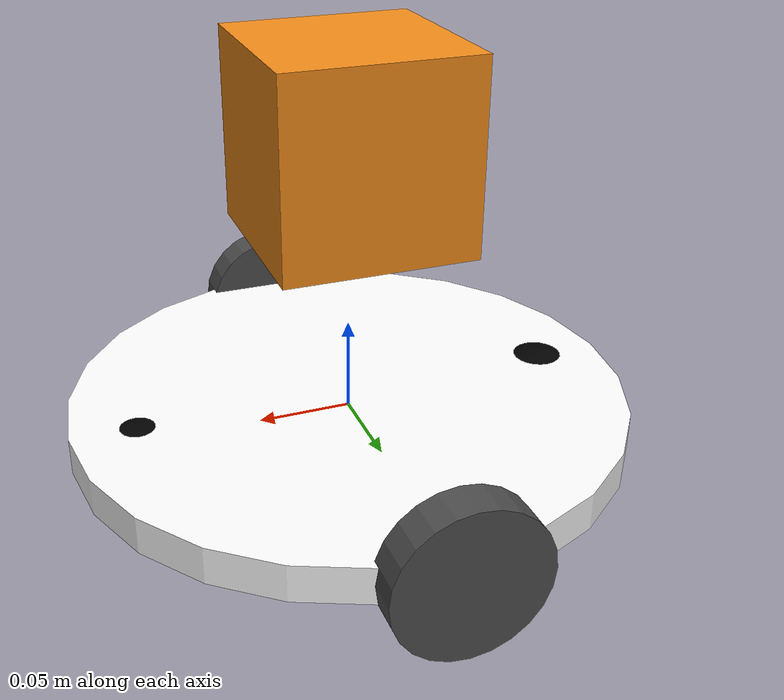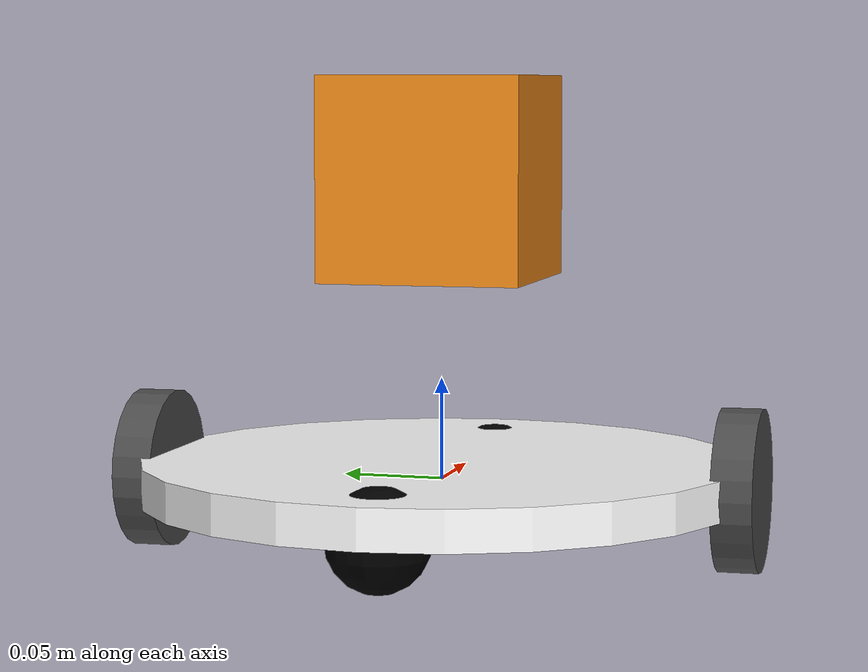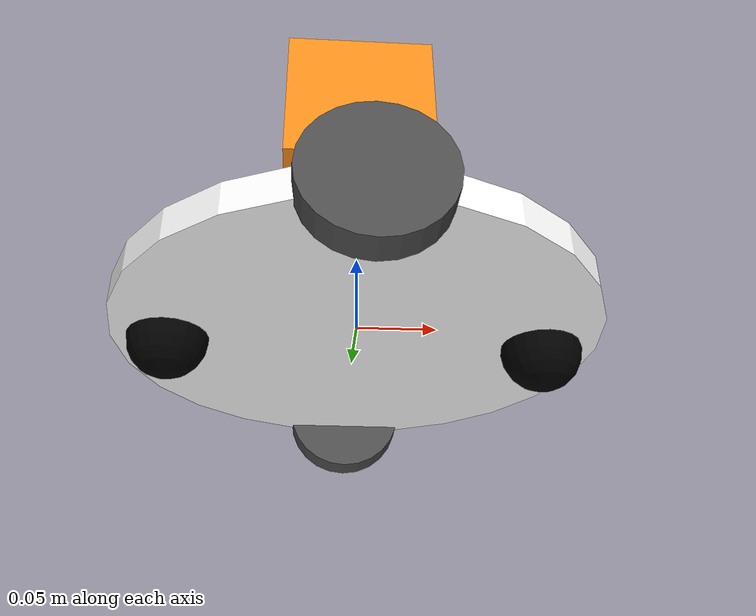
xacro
<?xml version="1.0"?>

<robot name="diff_robot" xmlns:xacro="http://ros.org/wiki/xacro">
  <xacro:include filename="$(find rl_robot_description_pkg)/urdf/diff_robot_macro.xacro" />
  <xacro:property name="M_PI" value="3.1415926535897931" />

		<!--Actual body/chassis of the robot-->
	<link name="base_link">
		<inertial>
			<mass value="${base_mass}" />
			<origin xyz="0 0 0" />
			<cylinder_inertia  m="${base_mass}" r="${base_radius}" h="${base_height}" />
		</inertial>
		<visual>
			<origin xyz="0 0 0" rpy="0 0 0" />
			<geometry>
				<cylinder length="${base_height}" radius="${base_radius}" />
			</geometry>
			<material name="White" />
		</visual>
		<collision>
			<origin xyz="0 0 0" rpy="0 0 0 " />
			<geometry>
				<cylinder length="${base_height}" radius="${base_radius}" />
			</geometry>
		</collision>
	</link>

	<link name="sensor_link">
    <visual>
      <origin xyz="0 0 0.05" rpy="0 0 0"/>
      <geometry>
        <box size="0.1 0.1 0.1"/>
      </geometry>
      <material name="orange"/>
    </visual>
  </link>

	<joint name="sensor_joint" type="fixed">
		<parent link="base_link" />
		<child link="sensor_link" />
		<origin xyz="0.0 0.0 0.1" rpy="0 0 0"/>
	</joint>

	<xacro:caster_joint
		name="caster_front_link"
		parent="base_link"
		child="caster_front_link">
		<origin xyz="0.115 0.0 0.007" rpy="${-M_PI/2} 0 0"/>
	</xacro:caster_joint>

	<xacro:caster_link
		name="caster_front_link">
			<origin xyz="0 0.02 0" rpy="${M_PI/2} 0 0" />
	</xacro:caster_link>

	<xacro:caster_joint
		name="caster_back_joint"
		parent="base_link"
		child="caster_back_link">
		<origin xyz="-0.135 0.0 0.009" rpy="${-M_PI/2} 0 0"/>
	</xacro:caster_joint>

	<xacro:caster_link
		name="caster_back_link">
			<origin xyz="0.02 0.02 0 " rpy="${M_PI/2} 0 0" />
	</xacro:caster_link>

	<wheel fb="front" lr="right" parent="base_link" translateX="0" translateY="0.5" flipY="1"/>
	<wheel fb="front" lr="left" parent="base_link" translateX="0" translateY="-0.5" flipY="1"/>

  <!-- Differential drive controller  -->
  <gazebo>
    <plugin name="differential_drive_controller" filename="libgazebo_ros_diff_drive.so">
      <legacyMode>true</legacyMode>
      <rosDebugLevel>Debug</rosDebugLevel>
      <publishWheelTF>false</publishWheelTF>
      <robotNamespace>/</robotNamespace>
      <publishTf>1</publishTf>
      <publishWheelJointState>false</publishWheelJointState>
      <alwaysOn>true</alwaysOn>
      <updateRate>100.0</updateRate>
      <leftJoint>front_left_wheel_joint</leftJoint>
      <rightJoint>front_right_wheel_joint</rightJoint>
      <wheelSeparation>${2*base_radius}</wheelSeparation>
      <wheelDiameter>${2*wheel_radius}</wheelDiameter>
      <broadcastTF>1</broadcastTF>
      <wheelTorque>30</wheelTorque>
      <wheelAcceleration>1.8</wheelAcceleration>
      <commandTopic>cmd_vel</commandTopic>
      <odometryFrame>odom</odometryFrame>
      <odometryTopic>odom</odometryTopic>
      <robotBaseFrame>base_link</robotBaseFrame>
    </plugin>

		<plugin name="libwheels_vel" filename="libwheels_vel.so">

		</plugin>
  </gazebo>

	<gazebo reference="sensor_link">
			<sensor type="ray" name="laser">
      <pose>0 0 0.0 0 0 0</pose>
      <visualize>true</visualize>
      <update_rate>40</update_rate>
       <ray>
        <scan>
          <horizontal>
            <samples>720</samples>
            <resolution>1</resolution>
             <min_angle>-1.57</min_angle>
             <max_angle>1.57</max_angle>
          </horizontal>
        </scan>
        <range>
          <min>0.3</min>
          <max>30.0</max>
          <resolution>0.01</resolution>
        </range>
        <noise>
          <type>gaussian</type>
          <mean>0.0</mean>
          <stddev>0.01</stddev>
        </noise>
      </ray>
      <plugin name="gazebo_ros_head_hokuyo_controller" filename="libgazebo_ros_laser.so">
        <topicName>/laser/scan</topicName>
        <frameName>base_link</frameName>
      </plugin>
		</sensor>

  </gazebo>

</robot>

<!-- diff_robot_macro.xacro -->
<robot name="wheel" xmlns:xacro="http://www.ros.org/wiki/xacro">

  <!--All units in m-kg-s-radians unit system -->
  <xacro:property name="M_PI" value="3.1415926535897931" />
  <xacro:property name="M_PI_2" value="1.570796327" />
  <xacro:property name="DEG_TO_RAD" value="0.017453293" />

	<!--Material Definition-->
	<material name="Black">
	  <color rgba="0.0 0.0 0.0 1.0"/>
	</material>

  <material name="Red">
  	<color rgba="0.8 0.0 0.0 1.0"/>
  </material>

  <material name="White">
    <color rgba="1.0 1.0 1.0 1.0"/>
  </material>

  <material name="Blue">
    <color rgba="0.0 0.0 0.8 1.0"/>
  </material>

  <!-- Base properties -->
	<xacro:property name="base_height" value="0.02" />
  <xacro:property name="base_radius" value="0.15" />
  <xacro:property name="base_mass" value="5" />

  <!-- caster wheel proprieties  -->
  <xacro:property name="caster_height" value="0.04" />
  <xacro:property name="caster_radius" value="0.025" />
  <xacro:property name="caster_mass" value="0.5" /> <!-- in kg-->

  <!-- Wheels -->
  <xacro:property name="wheel_radius" value="0.04" />
  <xacro:property name="wheel_height" value="0.02" />
  <xacro:property name="wheel_mass" value="2.5" /> <!-- in kg-->

  <xacro:property name="base_x_origin_to_wheel_origin" value="0.25" />
  <xacro:property name="base_y_origin_to_wheel_origin" value="0.3" />
  <xacro:property name="base_z_origin_to_wheel_origin" value="0.0" />

  <xacro:macro name="cylinder_inertia" params="m r h">
    <inertia  ixx="${m*(3*r*r+h*h)/12}" ixy = "0" ixz = "0"
              iyy="${m*(3*r*r+h*h)/12}" iyz = "0"
              izz="${m*r*r/2}" />
  </xacro:macro>

	<xacro:macro name="caster_joint" params="name parent child *origin">
		<joint name="${name}" type="fixed" >
			<parent link="${parent}" />
			<child link="${child}" />
	    <xacro:insert_block name="origin" />
		</joint>
	</xacro:macro>

	<xacro:macro name="caster_link" params="name *origin">
		<link name="${name}">
			<visual>
	    	<xacro:insert_block name="origin" />
				<geometry>
					<sphere radius="${caster_radius}" />
				</geometry>
				<material name="Black" />
			</visual>
			<collision>
				<geometry>
					<sphere radius="${caster_radius}" />
				</geometry>
				<origin xyz="0 0.02 0" rpy="${M_PI/2} 0 0" />
			</collision>
			<inertial>
				<mass value="${caster_mass}" />
				<origin xyz="0 0 0" />
					<inertia  ixx="0.001" ixy="0.0" ixz="0.0"
						  			iyy="0.001" iyz="0.0"
 										izz="0.001" />
			</inertial>
		</link>
	</xacro:macro>

	<!--fb : front, back ; lr: left, right -->
  <xacro:macro name="wheel" params="fb lr parent translateX translateY flipY">
	  <link name="${fb}_${lr}_wheel">
      <visual>
        <origin xyz="0 0 0" rpy="${flipY*M_PI/2} 0  0 " />
        <geometry>
          <cylinder length="${wheel_height}" radius="${wheel_radius}" />
        </geometry>
        <material name="DarkGray" />
      </visual>
      <collision>
        <origin xyz="0 0 0" rpy="${flipY*M_PI/2} 0 0 " />
        <geometry>
          <cylinder length="${wheel_height}" radius="${wheel_radius}" />
        </geometry>
      </collision>
      <inertial>
        <mass value="${wheel_mass}" />
        <origin xyz="0 0 0" />
        <cylinder_inertia  m="${wheel_mass}" r="${wheel_radius}" h="${wheel_height}" />
      </inertial>
    </link>

    <joint name="${fb}_${lr}_wheel_joint" type="continuous">
      <parent link="${parent}"/>
      <child link="${fb}_${lr}_wheel"/>
      <origin xyz="${translateX * base_x_origin_to_wheel_origin} ${translateY * base_y_origin_to_wheel_origin} ${base_z_origin_to_wheel_origin}" rpy="0 0 0" />
      <axis xyz="0 1 0" rpy="0  0" />
      <limit effort="100" velocity="100"/>
      <joint_properties damping="0.0" friction="0.0"/>
    </joint>

    <!-- Transmission is important to link the joints and the controller -->
    <transmission name="${fb}_${lr}_wheel_joint_trans">
      <type>transmission_interface/SimpleTransmission</type>
      <joint name="${fb}_${lr}_wheel_joint" />
      <actuator name="${fb}_${lr}_wheel_joint_motor">
        <hardwareInterface>EffortJointInterface</hardwareInterface>
        <mechanicalReduction>1</mechanicalReduction>
      </actuator>
    </transmission>
  </xacro:macro>
</robot>
